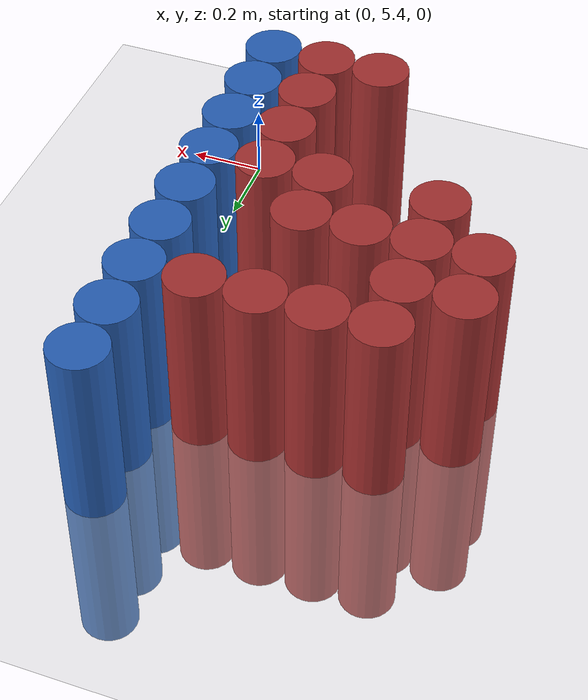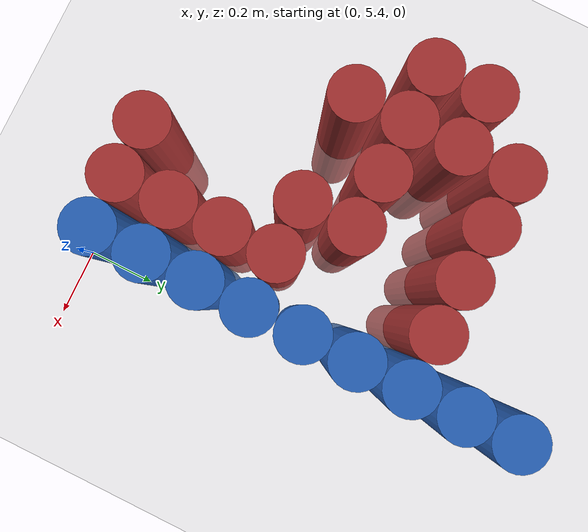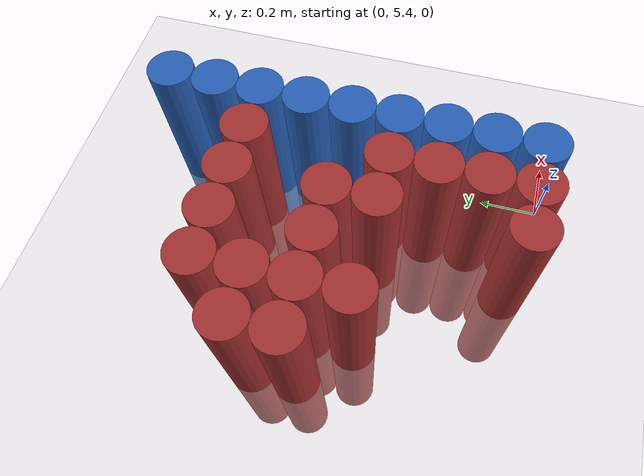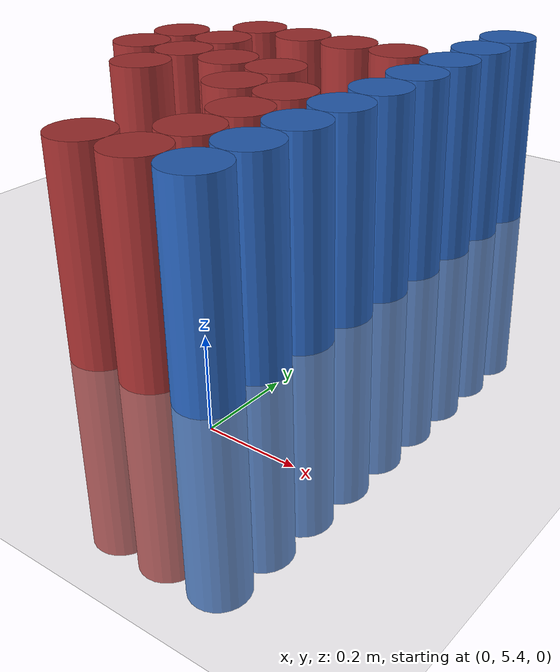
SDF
<sdf version="1.6">
 <world name="world_43">
  <model name="ground_plane">
   <static>1</static>
   <link name="link">
    <collision name="collision">
     <geometry><plane><normal>0 0 1</normal><size>100 100</size></plane></geometry>
     <surface><friction><ode><mu>100</mu><mu2>50</mu2></ode></friction></surface>
    </collision>
    <visual name="visual">
     <cast_shadows>0</cast_shadows>
     <geometry><plane><normal>0 0 1</normal><size>100 100</size></plane></geometry>
     <material>
      <script><uri>file://media/materials/scripts/gazebo.material</uri><name>Gazebo/Grey</name></script>
     </material>
    </visual>
   </link>
  </model>
  <model name="unit_cylinder_153">
   <static>1</static>
   <pose>-0.825000 6.075000 0.000000 0.000000 0.000000 0.000000</pose>
   <link name="link">
    <inertial>
     <mass>1</mass>
     <inertia><ixx>0.145833</ixx><ixy>0</ixy><ixz>0</ixz><iyy>0.145833</iyy><iyz>0</iyz><izz>0.125</izz></inertia>
    </inertial>
    <collision name="collision">
     <geometry><cylinder><radius>0.075000</radius><length>1</length></cylinder></geometry>
    </collision>
    <visual name="visual">
     <geometry><cylinder><radius>0.075000</radius><length>1</length></cylinder></geometry>
     <material>
      <ambient>0.648000 0.192000 0.192000 1</ambient>
      <diffuse>0.648000 0.192000 0.192000 1</diffuse>
     </material>
     <material>
      <script><name>Gazebo/Grey</name><uri>file://media/materials/scripts/gazebo.material</uri></script>
     </material>
    </visual>
   </link>
  </model>
  <model name="unit_cylinder_154">
   <static>1</static>
   <pose>-0.825000 6.225000 0.000000 0.000000 0.000000 0.000000</pose>
   <link name="link">
    <inertial>
     <mass>1</mass>
     <inertia><ixx>0.145833</ixx><ixy>0</ixy><ixz>0</ixz><iyy>0.145833</iyy><iyz>0</iyz><izz>0.125</izz></inertia>
    </inertial>
    <collision name="collision">
     <geometry><cylinder><radius>0.075000</radius><length>1</length></cylinder></geometry>
    </collision>
    <visual name="visual">
     <geometry><cylinder><radius>0.075000</radius><length>1</length></cylinder></geometry>
     <material>
      <ambient>0.648000 0.192000 0.192000 1</ambient>
      <diffuse>0.648000 0.192000 0.192000 1</diffuse>
     </material>
     <material>
      <script><name>Gazebo/Grey</name><uri>file://media/materials/scripts/gazebo.material</uri></script>
     </material>
    </visual>
   </link>
  </model>
  <model name="unit_cylinder_157">
   <static>1</static>
   <pose>-0.675000 5.925000 0.000000 0.000000 0.000000 0.000000</pose>
   <link name="link">
    <inertial>
     <mass>1</mass>
     <inertia><ixx>0.145833</ixx><ixy>0</ixy><ixz>0</ixz><iyy>0.145833</iyy><iyz>0</iyz><izz>0.125</izz></inertia>
    </inertial>
    <collision name="collision">
     <geometry><cylinder><radius>0.075000</radius><length>1</length></cylinder></geometry>
    </collision>
    <visual name="visual">
     <geometry><cylinder><radius>0.075000</radius><length>1</length></cylinder></geometry>
     <material>
      <ambient>0.648000 0.192000 0.192000 1</ambient>
      <diffuse>0.648000 0.192000 0.192000 1</diffuse>
     </material>
     <material>
      <script><name>Gazebo/Grey</name><uri>file://media/materials/scripts/gazebo.material</uri></script>
     </material>
    </visual>
   </link>
  </model>
  <model name="unit_cylinder_158">
   <static>1</static>
   <pose>-0.675000 6.075000 0.000000 0.000000 0.000000 0.000000</pose>
   <link name="link">
    <inertial>
     <mass>1</mass>
     <inertia><ixx>0.145833</ixx><ixy>0</ixy><ixz>0</ixz><iyy>0.145833</iyy><iyz>0</iyz><izz>0.125</izz></inertia>
    </inertial>
    <collision name="collision">
     <geometry><cylinder><radius>0.075000</radius><length>1</length></cylinder></geometry>
    </collision>
    <visual name="visual">
     <geometry><cylinder><radius>0.075000</radius><length>1</length></cylinder></geometry>
     <material>
      <ambient>0.648000 0.192000 0.192000 1</ambient>
      <diffuse>0.648000 0.192000 0.192000 1</diffuse>
     </material>
     <material>
      <script><name>Gazebo/Grey</name><uri>file://media/materials/scripts/gazebo.material</uri></script>
     </material>
    </visual>
   </link>
  </model>
  <model name="unit_cylinder_159">
   <static>1</static>
   <pose>-0.675000 6.225000 0.000000 0.000000 0.000000 0.000000</pose>
   <link name="link">
    <inertial>
     <mass>1</mass>
     <inertia><ixx>0.145833</ixx><ixy>0</ixy><ixz>0</ixz><iyy>0.145833</iyy><iyz>0</iyz><izz>0.125</izz></inertia>
    </inertial>
    <collision name="collision">
     <geometry><cylinder><radius>0.075000</radius><length>1</length></cylinder></geometry>
    </collision>
    <visual name="visual">
     <geometry><cylinder><radius>0.075000</radius><length>1</length></cylinder></geometry>
     <material>
      <ambient>0.648000 0.192000 0.192000 1</ambient>
      <diffuse>0.648000 0.192000 0.192000 1</diffuse>
     </material>
     <material>
      <script><name>Gazebo/Grey</name><uri>file://media/materials/scripts/gazebo.material</uri></script>
     </material>
    </visual>
   </link>
  </model>
  <model name="unit_cylinder_160">
   <static>1</static>
   <pose>-0.675000 6.375000 0.000000 0.000000 0.000000 0.000000</pose>
   <link name="link">
    <inertial>
     <mass>1</mass>
     <inertia><ixx>0.145833</ixx><ixy>0</ixy><ixz>0</ixz><iyy>0.145833</iyy><iyz>0</iyz><izz>0.125</izz></inertia>
    </inertial>
    <collision name="collision">
     <geometry><cylinder><radius>0.075000</radius><length>1</length></cylinder></geometry>
    </collision>
    <visual name="visual">
     <geometry><cylinder><radius>0.075000</radius><length>1</length></cylinder></geometry>
     <material>
      <ambient>0.648000 0.192000 0.192000 1</ambient>
      <diffuse>0.648000 0.192000 0.192000 1</diffuse>
     </material>
     <material>
      <script><name>Gazebo/Grey</name><uri>file://media/materials/scripts/gazebo.material</uri></script>
     </material>
    </visual>
   </link>
  </model>
  <model name="unit_cylinder_161">
   <static>1</static>
   <pose>-0.525000 6.075000 0.000000 0.000000 0.000000 0.000000</pose>
   <link name="link">
    <inertial>
     <mass>1</mass>
     <inertia><ixx>0.145833</ixx><ixy>0</ixy><ixz>0</ixz><iyy>0.145833</iyy><iyz>0</iyz><izz>0.125</izz></inertia>
    </inertial>
    <collision name="collision">
     <geometry><cylinder><radius>0.075000</radius><length>1</length></cylinder></geometry>
    </collision>
    <visual name="visual">
     <geometry><cylinder><radius>0.075000</radius><length>1</length></cylinder></geometry>
     <material>
      <ambient>0.648000 0.192000 0.192000 1</ambient>
      <diffuse>0.648000 0.192000 0.192000 1</diffuse>
     </material>
     <material>
      <script><name>Gazebo/Grey</name><uri>file://media/materials/scripts/gazebo.material</uri></script>
     </material>
    </visual>
   </link>
  </model>
  <model name="unit_cylinder_162">
   <static>1</static>
   <pose>-0.525000 6.375000 0.000000 0.000000 0.000000 0.000000</pose>
   <link name="link">
    <inertial>
     <mass>1</mass>
     <inertia><ixx>0.145833</ixx><ixy>0</ixy><ixz>0</ixz><iyy>0.145833</iyy><iyz>0</iyz><izz>0.125</izz></inertia>
    </inertial>
    <collision name="collision">
     <geometry><cylinder><radius>0.075000</radius><length>1</length></cylinder></geometry>
    </collision>
    <visual name="visual">
     <geometry><cylinder><radius>0.075000</radius><length>1</length></cylinder></geometry>
     <material>
      <ambient>0.648000 0.192000 0.192000 1</ambient>
      <diffuse>0.648000 0.192000 0.192000 1</diffuse>
     </material>
     <material>
      <script><name>Gazebo/Grey</name><uri>file://media/materials/scripts/gazebo.material</uri></script>
     </material>
    </visual>
   </link>
  </model>
  <model name="unit_cylinder_163">
   <static>1</static>
   <pose>-0.375000 5.475000 0.000000 0.000000 0.000000 0.000000</pose>
   <link name="link">
    <inertial>
     <mass>1</mass>
     <inertia><ixx>0.145833</ixx><ixy>0</ixy><ixz>0</ixz><iyy>0.145833</iyy><iyz>0</iyz><izz>0.125</izz></inertia>
    </inertial>
    <collision name="collision">
     <geometry><cylinder><radius>0.075000</radius><length>1</length></cylinder></geometry>
    </collision>
    <visual name="visual">
     <geometry><cylinder><radius>0.075000</radius><length>1</length></cylinder></geometry>
     <material>
      <ambient>0.648000 0.192000 0.192000 1</ambient>
      <diffuse>0.648000 0.192000 0.192000 1</diffuse>
     </material>
     <material>
      <script><name>Gazebo/Grey</name><uri>file://media/materials/scripts/gazebo.material</uri></script>
     </material>
    </visual>
   </link>
  </model>
  <model name="unit_cylinder_164">
   <static>1</static>
   <pose>-0.375000 5.925000 0.000000 0.000000 0.000000 0.000000</pose>
   <link name="link">
    <inertial>
     <mass>1</mass>
     <inertia><ixx>0.145833</ixx><ixy>0</ixy><ixz>0</ixz><iyy>0.145833</iyy><iyz>0</iyz><izz>0.125</izz></inertia>
    </inertial>
    <collision name="collision">
     <geometry><cylinder><radius>0.075000</radius><length>1</length></cylinder></geometry>
    </collision>
    <visual name="visual">
     <geometry><cylinder><radius>0.075000</radius><length>1</length></cylinder></geometry>
     <material>
      <ambient>0.648000 0.192000 0.192000 1</ambient>
      <diffuse>0.648000 0.192000 0.192000 1</diffuse>
     </material>
     <material>
      <script><name>Gazebo/Grey</name><uri>file://media/materials/scripts/gazebo.material</uri></script>
     </material>
    </visual>
   </link>
  </model>
  <model name="unit_cylinder_165">
   <static>1</static>
   <pose>-0.375000 6.075000 0.000000 0.000000 0.000000 0.000000</pose>
   <link name="link">
    <inertial>
     <mass>1</mass>
     <inertia><ixx>0.145833</ixx><ixy>0</ixy><ixz>0</ixz><iyy>0.145833</iyy><iyz>0</iyz><izz>0.125</izz></inertia>
    </inertial>
    <collision name="collision">
     <geometry><cylinder><radius>0.075000</radius><length>1</length></cylinder></geometry>
    </collision>
    <visual name="visual">
     <geometry><cylinder><radius>0.075000</radius><length>1</length></cylinder></geometry>
     <material>
      <ambient>0.648000 0.192000 0.192000 1</ambient>
      <diffuse>0.648000 0.192000 0.192000 1</diffuse>
     </material>
     <material>
      <script><name>Gazebo/Grey</name><uri>file://media/materials/scripts/gazebo.material</uri></script>
     </material>
    </visual>
   </link>
  </model>
  <model name="unit_cylinder_166">
   <static>1</static>
   <pose>-0.375000 6.375000 0.000000 0.000000 0.000000 0.000000</pose>
   <link name="link">
    <inertial>
     <mass>1</mass>
     <inertia><ixx>0.145833</ixx><ixy>0</ixy><ixz>0</ixz><iyy>0.145833</iyy><iyz>0</iyz><izz>0.125</izz></inertia>
    </inertial>
    <collision name="collision">
     <geometry><cylinder><radius>0.075000</radius><length>1</length></cylinder></geometry>
    </collision>
    <visual name="visual">
     <geometry><cylinder><radius>0.075000</radius><length>1</length></cylinder></geometry>
     <material>
      <ambient>0.648000 0.192000 0.192000 1</ambient>
      <diffuse>0.648000 0.192000 0.192000 1</diffuse>
     </material>
     <material>
      <script><name>Gazebo/Grey</name><uri>file://media/materials/scripts/gazebo.material</uri></script>
     </material>
    </visual>
   </link>
  </model>
  <model name="unit_cylinder_168">
   <static>1</static>
   <pose>-0.225000 5.475000 0.000000 0.000000 0.000000 0.000000</pose>
   <link name="link">
    <inertial>
     <mass>1</mass>
     <inertia><ixx>0.145833</ixx><ixy>0</ixy><ixz>0</ixz><iyy>0.145833</iyy><iyz>0</iyz><izz>0.125</izz></inertia>
    </inertial>
    <collision name="collision">
     <geometry><cylinder><radius>0.075000</radius><length>1</length></cylinder></geometry>
    </collision>
    <visual name="visual">
     <geometry><cylinder><radius>0.075000</radius><length>1</length></cylinder></geometry>
     <material>
      <ambient>0.648000 0.192000 0.192000 1</ambient>
      <diffuse>0.648000 0.192000 0.192000 1</diffuse>
     </material>
     <material>
      <script><name>Gazebo/Grey</name><uri>file://media/materials/scripts/gazebo.material</uri></script>
     </material>
    </visual>
   </link>
  </model>
  <model name="unit_cylinder_169">
   <static>1</static>
   <pose>-0.225000 5.625000 0.000000 0.000000 0.000000 0.000000</pose>
   <link name="link">
    <inertial>
     <mass>1</mass>
     <inertia><ixx>0.145833</ixx><ixy>0</ixy><ixz>0</ixz><iyy>0.145833</iyy><iyz>0</iyz><izz>0.125</izz></inertia>
    </inertial>
    <collision name="collision">
     <geometry><cylinder><radius>0.075000</radius><length>1</length></cylinder></geometry>
    </collision>
    <visual name="visual">
     <geometry><cylinder><radius>0.075000</radius><length>1</length></cylinder></geometry>
     <material>
      <ambient>0.648000 0.192000 0.192000 1</ambient>
      <diffuse>0.648000 0.192000 0.192000 1</diffuse>
     </material>
     <material>
      <script><name>Gazebo/Grey</name><uri>file://media/materials/scripts/gazebo.material</uri></script>
     </material>
    </visual>
   </link>
  </model>
  <model name="unit_cylinder_170">
   <static>1</static>
   <pose>-0.225000 5.775000 0.000000 0.000000 0.000000 0.000000</pose>
   <link name="link">
    <inertial>
     <mass>1</mass>
     <inertia><ixx>0.145833</ixx><ixy>0</ixy><ixz>0</ixz><iyy>0.145833</iyy><iyz>0</iyz><izz>0.125</izz></inertia>
    </inertial>
    <collision name="collision">
     <geometry><cylinder><radius>0.075000</radius><length>1</length></cylinder></geometry>
    </collision>
    <visual name="visual">
     <geometry><cylinder><radius>0.075000</radius><length>1</length></cylinder></geometry>
     <material>
      <ambient>0.648000 0.192000 0.192000 1</ambient>
      <diffuse>0.648000 0.192000 0.192000 1</diffuse>
     </material>
     <material>
      <script><name>Gazebo/Grey</name><uri>file://media/materials/scripts/gazebo.material</uri></script>
     </material>
    </visual>
   </link>
  </model>
  <model name="unit_cylinder_171">
   <static>1</static>
   <pose>-0.225000 5.925000 0.000000 0.000000 0.000000 0.000000</pose>
   <link name="link">
    <inertial>
     <mass>1</mass>
     <inertia><ixx>0.145833</ixx><ixy>0</ixy><ixz>0</ixz><iyy>0.145833</iyy><iyz>0</iyz><izz>0.125</izz></inertia>
    </inertial>
    <collision name="collision">
     <geometry><cylinder><radius>0.075000</radius><length>1</length></cylinder></geometry>
    </collision>
    <visual name="visual">
     <geometry><cylinder><radius>0.075000</radius><length>1</length></cylinder></geometry>
     <material>
      <ambient>0.648000 0.192000 0.192000 1</ambient>
      <diffuse>0.648000 0.192000 0.192000 1</diffuse>
     </material>
     <material>
      <script><name>Gazebo/Grey</name><uri>file://media/materials/scripts/gazebo.material</uri></script>
     </material>
    </visual>
   </link>
  </model>
  <model name="unit_cylinder_172">
   <static>1</static>
   <pose>-0.225000 6.375000 0.000000 0.000000 0.000000 0.000000</pose>
   <link name="link">
    <inertial>
     <mass>1</mass>
     <inertia><ixx>0.145833</ixx><ixy>0</ixy><ixz>0</ixz><iyy>0.145833</iyy><iyz>0</iyz><izz>0.125</izz></inertia>
    </inertial>
    <collision name="collision">
     <geometry><cylinder><radius>0.075000</radius><length>1</length></cylinder></geometry>
    </collision>
    <visual name="visual">
     <geometry><cylinder><radius>0.075000</radius><length>1</length></cylinder></geometry>
     <material>
      <ambient>0.648000 0.192000 0.192000 1</ambient>
      <diffuse>0.648000 0.192000 0.192000 1</diffuse>
     </material>
     <material>
      <script><name>Gazebo/Grey</name><uri>file://media/materials/scripts/gazebo.material</uri></script>
     </material>
    </visual>
   </link>
  </model>
  <model name="unit_cylinder_181">
   <static>1</static>
   <pose>-0.075000 5.475000 0.000000 0.000000 0.000000 0.000000</pose>
   <link name="link">
    <inertial>
     <mass>1</mass>
     <inertia><ixx>0.145833</ixx><ixy>0</ixy><ixz>0</ixz><iyy>0.145833</iyy><iyz>0</iyz><izz>0.125</izz></inertia>
    </inertial>
    <collision name="collision">
     <geometry><cylinder><radius>0.075000</radius><length>1</length></cylinder></geometry>
    </collision>
    <visual name="visual">
     <geometry><cylinder><radius>0.075000</radius><length>1</length></cylinder></geometry>
     <material>
      <ambient>0.152000 0.379000 0.720000 1</ambient>
      <diffuse>0.152000 0.379000 0.720000 1</diffuse>
     </material>
     <material>
      <script><name>Gazebo/Grey</name><uri>file://media/materials/scripts/gazebo.material</uri></script>
     </material>
    </visual>
   </link>
  </model>
  <model name="unit_cylinder_182">
   <static>1</static>
   <pose>-0.075000 5.625000 0.000000 0.000000 0.000000 0.000000</pose>
   <link name="link">
    <inertial>
     <mass>1</mass>
     <inertia><ixx>0.145833</ixx><ixy>0</ixy><ixz>0</ixz><iyy>0.145833</iyy><iyz>0</iyz><izz>0.125</izz></inertia>
    </inertial>
    <collision name="collision">
     <geometry><cylinder><radius>0.075000</radius><length>1</length></cylinder></geometry>
    </collision>
    <visual name="visual">
     <geometry><cylinder><radius>0.075000</radius><length>1</length></cylinder></geometry>
     <material>
      <ambient>0.152000 0.379000 0.720000 1</ambient>
      <diffuse>0.152000 0.379000 0.720000 1</diffuse>
     </material>
     <material>
      <script><name>Gazebo/Grey</name><uri>file://media/materials/scripts/gazebo.material</uri></script>
     </material>
    </visual>
   </link>
  </model>
  <model name="unit_cylinder_183">
   <static>1</static>
   <pose>-0.075000 5.775000 0.000000 0.000000 0.000000 0.000000</pose>
   <link name="link">
    <inertial>
     <mass>1</mass>
     <inertia><ixx>0.145833</ixx><ixy>0</ixy><ixz>0</ixz><iyy>0.145833</iyy><iyz>0</iyz><izz>0.125</izz></inertia>
    </inertial>
    <collision name="collision">
     <geometry><cylinder><radius>0.075000</radius><length>1</length></cylinder></geometry>
    </collision>
    <visual name="visual">
     <geometry><cylinder><radius>0.075000</radius><length>1</length></cylinder></geometry>
     <material>
      <ambient>0.152000 0.379000 0.720000 1</ambient>
      <diffuse>0.152000 0.379000 0.720000 1</diffuse>
     </material>
     <material>
      <script><name>Gazebo/Grey</name><uri>file://media/materials/scripts/gazebo.material</uri></script>
     </material>
    </visual>
   </link>
  </model>
  <model name="unit_cylinder_184">
   <static>1</static>
   <pose>-0.075000 5.925000 0.000000 0.000000 0.000000 0.000000</pose>
   <link name="link">
    <inertial>
     <mass>1</mass>
     <inertia><ixx>0.145833</ixx><ixy>0</ixy><ixz>0</ixz><iyy>0.145833</iyy><iyz>0</iyz><izz>0.125</izz></inertia>
    </inertial>
    <collision name="collision">
     <geometry><cylinder><radius>0.075000</radius><length>1</length></cylinder></geometry>
    </collision>
    <visual name="visual">
     <geometry><cylinder><radius>0.075000</radius><length>1</length></cylinder></geometry>
     <material>
      <ambient>0.152000 0.379000 0.720000 1</ambient>
      <diffuse>0.152000 0.379000 0.720000 1</diffuse>
     </material>
     <material>
      <script><name>Gazebo/Grey</name><uri>file://media/materials/scripts/gazebo.material</uri></script>
     </material>
    </visual>
   </link>
  </model>
  <model name="unit_cylinder_185">
   <static>1</static>
   <pose>-0.075000 6.075000 0.000000 0.000000 0.000000 0.000000</pose>
   <link name="link">
    <inertial>
     <mass>1</mass>
     <inertia><ixx>0.145833</ixx><ixy>0</ixy><ixz>0</ixz><iyy>0.145833</iyy><iyz>0</iyz><izz>0.125</izz></inertia>
    </inertial>
    <collision name="collision">
     <geometry><cylinder><radius>0.075000</radius><length>1</length></cylinder></geometry>
    </collision>
    <visual name="visual">
     <geometry><cylinder><radius>0.075000</radius><length>1</length></cylinder></geometry>
     <material>
      <ambient>0.152000 0.379000 0.720000 1</ambient>
      <diffuse>0.152000 0.379000 0.720000 1</diffuse>
     </material>
     <material>
      <script><name>Gazebo/Grey</name><uri>file://media/materials/scripts/gazebo.material</uri></script>
     </material>
    </visual>
   </link>
  </model>
  <model name="unit_cylinder_186">
   <static>1</static>
   <pose>-0.075000 6.225000 0.000000 0.000000 0.000000 0.000000</pose>
   <link name="link">
    <inertial>
     <mass>1</mass>
     <inertia><ixx>0.145833</ixx><ixy>0</ixy><ixz>0</ixz><iyy>0.145833</iyy><iyz>0</iyz><izz>0.125</izz></inertia>
    </inertial>
    <collision name="collision">
     <geometry><cylinder><radius>0.075000</radius><length>1</length></cylinder></geometry>
    </collision>
    <visual name="visual">
     <geometry><cylinder><radius>0.075000</radius><length>1</length></cylinder></geometry>
     <material>
      <ambient>0.152000 0.379000 0.720000 1</ambient>
      <diffuse>0.152000 0.379000 0.720000 1</diffuse>
     </material>
     <material>
      <script><name>Gazebo/Grey</name><uri>file://media/materials/scripts/gazebo.material</uri></script>
     </material>
    </visual>
   </link>
  </model>
  <model name="unit_cylinder_187">
   <static>1</static>
   <pose>-0.075000 6.375000 0.000000 0.000000 0.000000 0.000000</pose>
   <link name="link">
    <inertial>
     <mass>1</mass>
     <inertia><ixx>0.145833</ixx><ixy>0</ixy><ixz>0</ixz><iyy>0.145833</iyy><iyz>0</iyz><izz>0.125</izz></inertia>
    </inertial>
    <collision name="collision">
     <geometry><cylinder><radius>0.075000</radius><length>1</length></cylinder></geometry>
    </collision>
    <visual name="visual">
     <geometry><cylinder><radius>0.075000</radius><length>1</length></cylinder></geometry>
     <material>
      <ambient>0.152000 0.379000 0.720000 1</ambient>
      <diffuse>0.152000 0.379000 0.720000 1</diffuse>
     </material>
     <material>
      <script><name>Gazebo/Grey</name><uri>file://media/materials/scripts/gazebo.material</uri></script>
     </material>
    </visual>
   </link>
  </model>
  <model name="unit_cylinder_188">
   <static>1</static>
   <pose>-0.075000 6.525000 0.000000 0.000000 0.000000 0.000000</pose>
   <link name="link">
    <inertial>
     <mass>1</mass>
     <inertia><ixx>0.145833</ixx><ixy>0</ixy><ixz>0</ixz><iyy>0.145833</iyy><iyz>0</iyz><izz>0.125</izz></inertia>
    </inertial>
    <collision name="collision">
     <geometry><cylinder><radius>0.075000</radius><length>1</length></cylinder></geometry>
    </collision>
    <visual name="visual">
     <geometry><cylinder><radius>0.075000</radius><length>1</length></cylinder></geometry>
     <material>
      <ambient>0.152000 0.379000 0.720000 1</ambient>
      <diffuse>0.152000 0.379000 0.720000 1</diffuse>
     </material>
     <material>
      <script><name>Gazebo/Grey</name><uri>file://media/materials/scripts/gazebo.material</uri></script>
     </material>
    </visual>
   </link>
  </model>
  <model name="unit_cylinder_189">
   <static>1</static>
   <pose>-0.075000 6.675000 0.000000 0.000000 0.000000 0.000000</pose>
   <link name="link">
    <inertial>
     <mass>1</mass>
     <inertia><ixx>0.145833</ixx><ixy>0</ixy><ixz>0</ixz><iyy>0.145833</iyy><iyz>0</iyz><izz>0.125</izz></inertia>
    </inertial>
    <collision name="collision">
     <geometry><cylinder><radius>0.075000</radius><length>1</length></cylinder></geometry>
    </collision>
    <visual name="visual">
     <geometry><cylinder><radius>0.075000</radius><length>1</length></cylinder></geometry>
     <material>
      <ambient>0.152000 0.379000 0.720000 1</ambient>
      <diffuse>0.152000 0.379000 0.720000 1</diffuse>
     </material>
     <material>
      <script><name>Gazebo/Grey</name><uri>file://media/materials/scripts/gazebo.material</uri></script>
     </material>
    </visual>
   </link>
  </model>
 </world>
</sdf>
